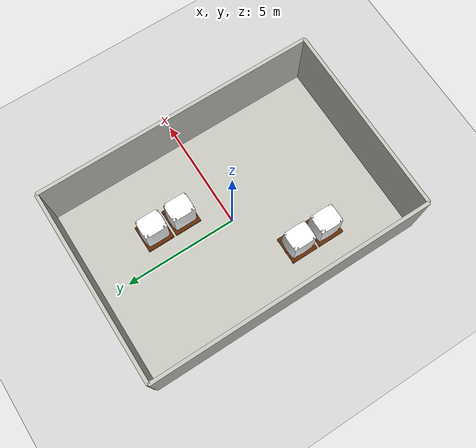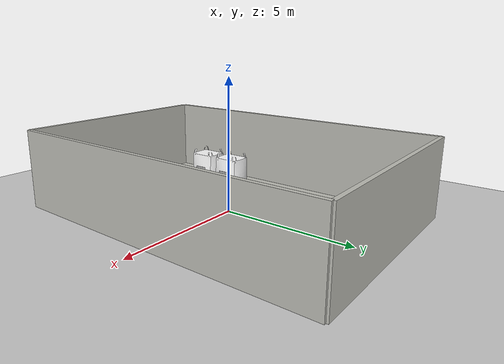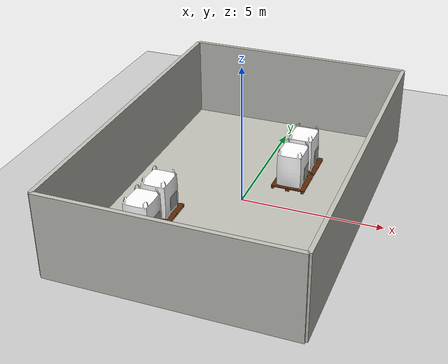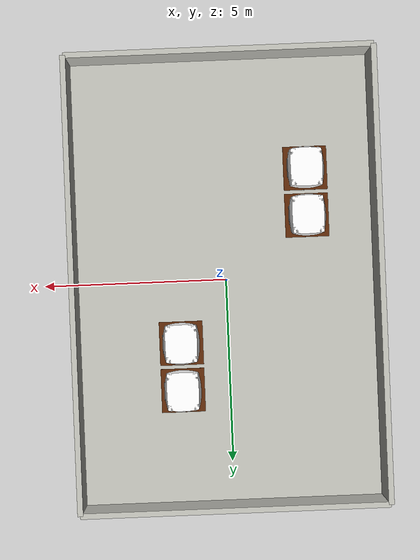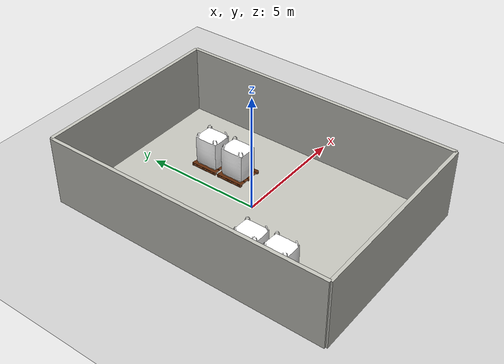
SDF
<?xml version="1.0" encoding='utf-8' ?>

<!--
SPDX-FileCopyrightText: 2022-2026 David Bensoussan

SPDX-License-Identifier: MPL-2.0
-->

<sdf version="1.6">
  <world name="qrcodes_small">

    <physics name="1ms" type="ignored">
      <max_step_size>0.001</max_step_size>
      <real_time_factor>1.0</real_time_factor>
    </physics>
    <plugin filename="gz-sim-physics-system" name="gz::sim::systems::Physics">
    </plugin>
    <plugin filename="gz-sim-sensors-system" name="gz::sim::systems::Sensors">
      <render_engine>ogre2</render_engine>
    </plugin>
    <plugin filename="gz-sim-imu-system" name="gz::sim::systems::Imu">
    </plugin>
    <plugin filename="gz-sim-user-commands-system" name="gz::sim::systems::UserCommands">
    </plugin>
    <plugin filename="gz-sim-scene-broadcaster-system" name="gz::sim::systems::SceneBroadcaster">
    </plugin>

    <model name="ground_plane">
      <static>true</static>
      <link name="link">
        <collision name="collision">
          <geometry>
            <plane>
              <normal>0 0 1</normal>
              <size>20 20</size>
            </plane>
          </geometry>
        </collision>
        <visual name="visual">
          <geometry>
            <plane>
              <normal>0 0 1</normal>
              <size>20 20</size>
            </plane>
          </geometry>
          <material>
            <ambient>0.8 0.8 0.8 1</ambient>
            <diffuse>0.8 0.8 0.8 1</diffuse>
            <specular>0.8 0.8 0.8 1</specular>
          </material>
        </visual>
      </link>
    </model>

    <light type="directional" name="sun">
      <cast_shadows>true</cast_shadows>
      <pose>0 0 10 0 0 0</pose>
      <diffuse>0.8 0.8 0.8 1</diffuse>
      <specular>0.2 0.2 0.2 1</specular>
      <attenuation>
        <range>1000</range>
        <constant>0.9</constant>
        <linear>0.01</linear>
        <quadratic>0.001</quadratic>
      </attenuation>
      <direction>-0.5 0.1 -0.9</direction>
    </light>

    <model name="room">
      <static>true</static>
      <link name="room_base">
      <collision name="floor_collision">
        <pose>0 0 -0.05 0 0 0</pose>
        <geometry>
          <box>
            <size>8.3 12.3 0.1</size>
          </box>
        </geometry>
      </collision>
      <visual name="floor_visual">
        <pose>0 0 -0.05 0 0 0</pose>
        <geometry>
          <box>
            <size>8.3 12.3 0.1</size>
          </box>
        </geometry>
        <material>
          <ambient>0.75 0.75 0.72 1</ambient>
          <diffuse>0.75 0.75 0.72 1</diffuse>
          <specular>0.1 0.1 0.1 1</specular>
        </material>
      </visual>

      <collision name="wall_west_collision">
        <pose>-4.15 0 1.5 0 0 0</pose>
        <geometry>
          <box>
            <size>0.15 12.3 3.0</size>
          </box>
        </geometry>
      </collision>
      <visual name="wall_west_visual">
        <pose>-4.15 0 1.5 0 0 0</pose>
        <geometry>
          <box>
            <size>0.15 12.3 3.0</size>
          </box>
        </geometry>
        <material>
          <ambient>0.75 0.75 0.72 1</ambient>
          <diffuse>0.75 0.75 0.72 1</diffuse>
          <specular>0.1 0.1 0.1 1</specular>
        </material>
      </visual>

      <collision name="wall_east_collision">
        <pose>4.15 0 1.5 0 0 0</pose>
        <geometry>
          <box>
            <size>0.15 12.3 3.0</size>
          </box>
        </geometry>
      </collision>
      <visual name="wall_east_visual">
        <pose>4.15 0 1.5 0 0 0</pose>
        <geometry>
          <box>
            <size>0.15 12.3 3.0</size>
          </box>
        </geometry>
        <material>
          <ambient>0.75 0.75 0.72 1</ambient>
          <diffuse>0.75 0.75 0.72 1</diffuse>
          <specular>0.1 0.1 0.1 1</specular>
        </material>
      </visual>

      <collision name="wall_south_collision">
        <pose>0 -6.15 1.5 0 0 0</pose>
        <geometry>
          <box>
            <size>8.3 0.15 3.0</size>
          </box>
        </geometry>
      </collision>
      <visual name="wall_south_visual">
        <pose>0 -6.15 1.5 0 0 0</pose>
        <geometry>
          <box>
            <size>8.3 0.15 3.0</size>
          </box>
        </geometry>
        <material>
          <ambient>0.75 0.75 0.72 1</ambient>
          <diffuse>0.75 0.75 0.72 1</diffuse>
          <specular>0.1 0.1 0.1 1</specular>
        </material>
      </visual>

      <collision name="wall_north_collision">
        <pose>0 6.15 1.5 0 0 0</pose>
        <geometry>
          <box>
            <size>8.3 0.15 3.0</size>
          </box>
        </geometry>
      </collision>
      <visual name="wall_north_visual">
        <pose>0 6.15 1.5 0 0 0</pose>
        <geometry>
          <box>
            <size>8.3 0.15 3.0</size>
          </box>
        </geometry>
        <material>
          <ambient>0.75 0.75 0.72 1</ambient>
          <diffuse>0.75 0.75 0.72 1</diffuse>
          <specular>0.1 0.1 0.1 1</specular>
        </material>
      </visual>
      </link>
    </model>

    <model name="pallet_1">
      <static>1</static>
      <pose>-2.301707 -3.0 0 0 0 0</pose>
      <include>
        <uri>model://europallet</uri>
      </include>
      <include>
        <uri>model://bag</uri>
      </include>
    </model>

    <model name="pallet_qr_1">
      <static>1</static>
      <pose>-1.8 -3.0 0.328453 0 0 0</pose>
      <include>
        <uri>model://qrcode_0001</uri>
      </include>
    </model>
    <model name="pallet_2">
      <static>1</static>
      <pose>-2.301707 -1.7 0 0 0 0</pose>
      <include>
        <uri>model://europallet</uri>
      </include>
      <include>
        <uri>model://bag</uri>
      </include>
    </model>

    <model name="pallet_qr_2">
      <static>1</static>
      <pose>-1.8 -1.7 0.328453 0 0 0</pose>
      <include>
        <uri>model://qrcode_0002</uri>
      </include>
    </model>
    <model name="pallet_3">
      <static>1</static>
      <pose>1.2982930000000001 1.7 0 0 0 0</pose>
      <include>
        <uri>model://europallet</uri>
      </include>
      <include>
        <uri>model://bag</uri>
      </include>
    </model>

    <model name="pallet_qr_3">
      <static>1</static>
      <pose>1.8 1.7 0.328453 0 0 0</pose>
      <include>
        <uri>model://qrcode_0003</uri>
      </include>
    </model>
    <model name="pallet_4">
      <static>1</static>
      <pose>1.2982930000000001 3.0 0 0 0 0</pose>
      <include>
        <uri>model://europallet</uri>
      </include>
      <include>
        <uri>model://bag</uri>
      </include>
    </model>

    <model name="pallet_qr_4">
      <static>1</static>
      <pose>1.8 3.0 0.328453 0 0 0</pose>
      <include>
        <uri>model://qrcode_0004</uri>
      </include>
    </model>

  </world>
</sdf>

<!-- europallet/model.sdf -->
<sdf version="1.7">
  <model name="europallet">
    <static>1</static>
    <link name="link">
      <collision name="collision">
        <geometry>
          <mesh>
            <uri>model://europallet/europallet.dae</uri>
            <scale>0.001 0.001 0.001</scale>
          </mesh>
        </geometry>
      </collision>
      <visual name='visual'>
        <geometry>
          <mesh>
            <uri>model://europallet/europallet.dae</uri>
            <scale>0.001 0.001 0.001</scale>
          </mesh>
        </geometry>
      </visual>
    </link>
  </model>
</sdf>

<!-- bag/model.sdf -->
<sdf version='1.7'>
  <model name='bag'>
    <link name='bag_one'>
      <inertial>
        <mass>1</mass>
        <inertia>
          <ixx>0.207</ixx>
          <ixy>0</ixy>
          <ixz>0</ixz>
          <iyy>0.149</iyy>
          <iyz>0</iyz>
          <izz>0.190</izz>
        </inertia>
        <pose>0 0 0.5 0 -0 0</pose>
      </inertial>
      <self_collide>0</self_collide>
      <enable_wind>0</enable_wind>
      <kinematic>0</kinematic>
      <pose>-0 0 0.144 0 -0 0</pose>
      <gravity>1</gravity>
      <visual name='bag_visual_one'>
        <geometry>
          <mesh>
            <uri>model://bag/bag_1000kg.stl</uri>
            <scale>0.00074 0.0008 0.0009</scale>
          </mesh>
        </geometry>
        <material>
          <ambient>1 1 1 1</ambient>
          <diffuse>1 1 1 1</diffuse>
          <specular>0 0 0 1</specular>
          <emissive>0 0 0 1</emissive>
        </material>
        <pose>0 0 0 1.5708 -0 0</pose>
        <transparency>0</transparency>
        <cast_shadows>1</cast_shadows>
      </visual>

      <collision name='bag_collision_one'>
        <laser_retro>0</laser_retro>
        <max_contacts>10</max_contacts>
        <pose>0 0 0.58 1.5708 -0 0</pose>
        <geometry>
          <box>
            <size>0.89 1.22 1</size>
          </box>
        </geometry>
        <surface>
          <friction>
            <ode>
              <mu>20</mu>
              <mu2>20</mu2>
              <fdir1>0 0 0</fdir1>
              <slip1>0</slip1>
              <slip2>0</slip2>
            </ode>
            <torsional>
              <coefficient>1</coefficient>
              <patch_radius>0</patch_radius>
              <surface_radius>0</surface_radius>
              <use_patch_radius>1</use_patch_radius>
              <ode>
                <slip>0</slip>
              </ode>
            </torsional>
          </friction>
          <bounce>
            <restitution_coefficient>0</restitution_coefficient>
            <threshold>1e+06</threshold>
          </bounce>
          <contact>
            <collide_without_contact>0</collide_without_contact>
            <collide_without_contact_bitmask>1</collide_without_contact_bitmask>
            <collide_bitmask>1</collide_bitmask>
            <ode>
              <soft_cfm>0</soft_cfm>
              <soft_erp>0.2</soft_erp>
              <kp>1e+13</kp>
              <kd>1</kd>
              <max_vel>0.01</max_vel>
              <min_depth>0</min_depth>
            </ode>
            <bullet>
              <split_impulse>1</split_impulse>
              <split_impulse_penetration_threshold>-0.01</split_impulse_penetration_threshold>
              <soft_cfm>0</soft_cfm>
              <soft_erp>0.2</soft_erp>
              <kp>1e+13</kp>
              <kd>1</kd>
            </bullet>
          </contact>
        </surface>
      </collision>
    </link>
    <static>1</static>
  </model>
</sdf>

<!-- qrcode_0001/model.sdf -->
<sdf version="1.6">
  <model name="qrcode_0001">
    <static>true</static>
    <link name="link">
      <visual name="visual">
        <geometry>
          <mesh>
            <uri>model://qrcode_0001/meshes/qrcode_0001.dae</uri>
          </mesh>
        </geometry>
      </visual>
    </link>
  </model>
</sdf>

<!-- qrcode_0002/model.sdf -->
<sdf version="1.6">
  <model name="qrcode_0002">
    <static>true</static>
    <link name="link">
      <visual name="visual">
        <geometry>
          <mesh>
            <uri>model://qrcode_0002/meshes/qrcode_0002.dae</uri>
          </mesh>
        </geometry>
      </visual>
    </link>
  </model>
</sdf>

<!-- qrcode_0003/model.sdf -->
<sdf version="1.6">
  <model name="qrcode_0003">
    <static>true</static>
    <link name="link">
      <visual name="visual">
        <geometry>
          <mesh>
            <uri>model://qrcode_0003/meshes/qrcode_0003.dae</uri>
          </mesh>
        </geometry>
      </visual>
    </link>
  </model>
</sdf>

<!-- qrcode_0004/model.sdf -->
<sdf version="1.6">
  <model name="qrcode_0004">
    <static>true</static>
    <link name="link">
      <visual name="visual">
        <geometry>
          <mesh>
            <uri>model://qrcode_0004/meshes/qrcode_0004.dae</uri>
          </mesh>
        </geometry>
      </visual>
    </link>
  </model>
</sdf>
